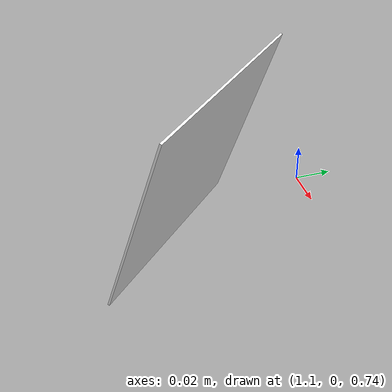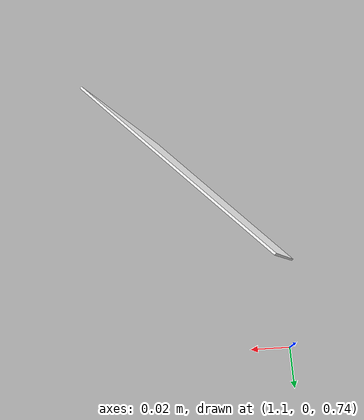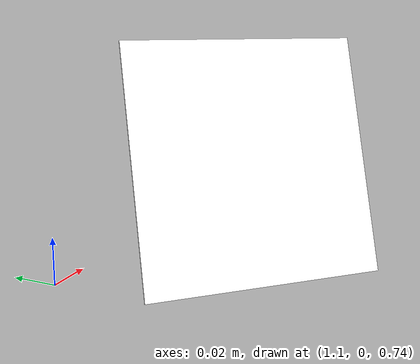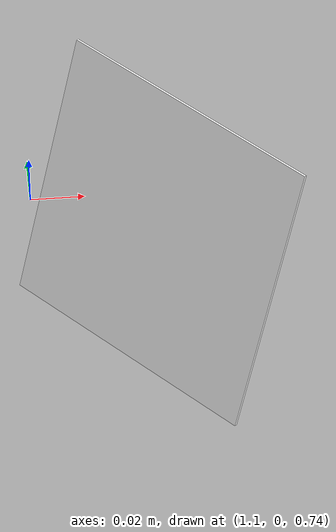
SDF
<?xml version="1.0" ?>
<sdf version="1.4">
  <!-- We use a custom world for the rrbot so that the camera angle is launched correctly -->

  <world name="default">
    <!-- Included light -->
    <include>
      <uri>https://fuel.gazebosim.org/1.0/OpenRobotics/models/Sun</uri>
    </include>

    <!-- Included model -->
    <include>
      <uri>https://fuel.gazebosim.org/1.0/OpenRobotics/models/Ground Plane</uri>
    </include>

    <include>
      <uri>
        model://arucotag
      </uri>
      <name>arucotag</name>
        <pose>1.14 -0.07 0.79 1.90 0.00 2.33</pose>
    </include>

    <gravity>0 0 0</gravity>

    <!-- Focus camera on tall pendulum -->
    <gui fullscreen='0'>
      <camera name='user_camera'>
        <pose>4.927360 -4.376610 3.740080 0.000000 0.275643 2.356190</pose>
        <view_controller>orbit</view_controller>
      </camera>
    </gui>

  </world>
</sdf>

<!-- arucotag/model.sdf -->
<sdf version="1.9">
  <model name="arucotag">
    <static>true</static>
     <pose>1.14 -0.08 0.79 1.90 0.00 2.33</pose><link name="base">
      <visual name="tag_visual">
        <geometry>
          <box>
            <size>0.1 0.1 0.001</size>
          </box>
        </geometry>
        <material>
          <ambient>1 1 1 1</ambient>
          <diffuse>1 1 1 1</diffuse>
          <pbr>
            <metal>
              <albedo_map>model://arucotag/aruco_iiwa.png</albedo_map>
            </metal>
          </pbr>
        </material>
      </visual>
      <collision name="tag_collision">
        <geometry>
          <box>
            <size>0.1 0.1 0.001</size>
          </box>
        </geometry>
      </collision>
    </link>
  </model>
</sdf>
